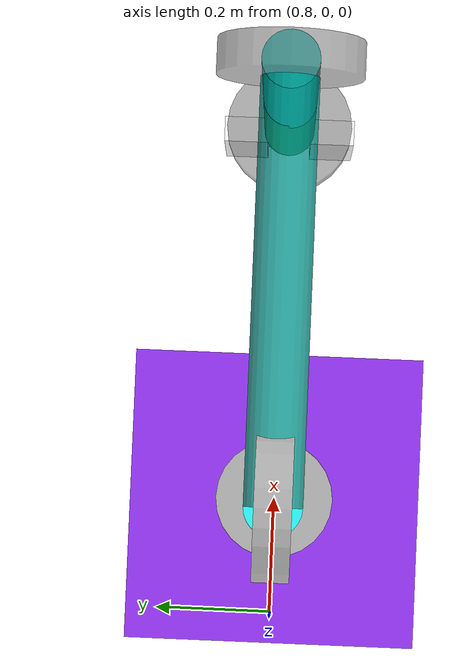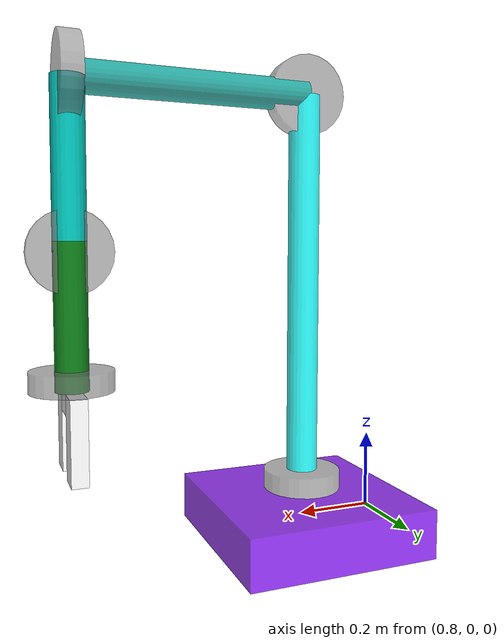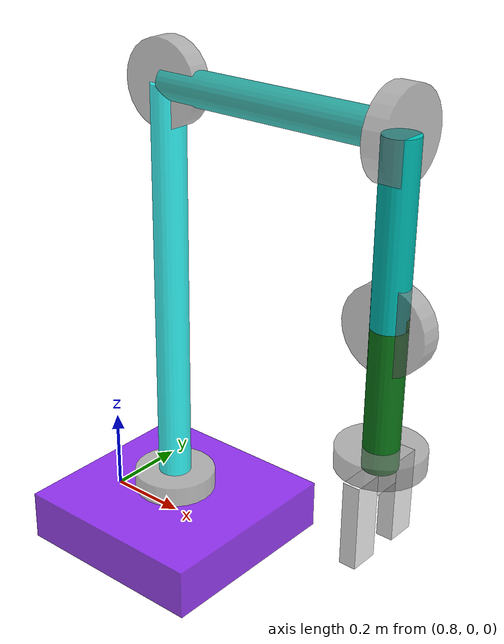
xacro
<?xml version="1.0"?>
<robot xmlns:xacro="http://www.ros.org/wiki/xacro"  name="robot">

    <material name="c_base">
        <color rgba="0.506 0.031 0.98 0.8"/>
    </material>

    <material name="white">
        <color rgba="1 1 1 1"/>
    </material>

    <material name="gray_j_side">
        <color rgba="0.5 0.5 0.5 0.6"/>
    </material>

    <material name="c_l1">
        <color rgba="0 1 1 0.8"/>
    </material>

    <material name="c_l2">
        <color rgba="0 0.617 0.579 0.8"/>
    </material>

    <material name="c_l3">
        <color rgba="0 0.778 0.742 1"/>
    </material>

    <material name="c_g">
        <color rgba="0.05 0.5 0.1 1"/>
    </material>

    <link name="world"></link>

    <joint name="world_to_base" type="prismatic">
        <parent link="world" />
        <child link="base" />
        <origin xyz="1.0 0 0" rpy="1.57 0 0" />
         <axis rpy="0 0 0" xyz="1 0 0" />
        <limit effort="0.1" lower="-3.0" upper="3.0" velocity="0.2"/>
    </joint>

    <link name="base">
        <visual>
            <origin xyz="0 0 0" rpy="1.57 0 0"/>
            <geometry>
                 <box size="0.5 0.5 0.125" />
            </geometry>
            <material name="c_base" />
        </visual>
    </link>

    <joint name="base_to_l1" type="revolute">
        <parent link="base" />
        <child link="l1" />
        <origin xyz="0 0.1 0" rpy="1.57 0 0"  />
        <axis xyz="0 0 1" />
        <limit effort="0.1" lower="-3.14" upper="3.14" velocity="0.2"/>
    </joint>

    <link name="l1">
        <visual>
            <origin xyz="0.0 0 0" rpy="0 0 1.57"/>
            <geometry>
                 <cylinder length="0.05" radius="0.1" />
            </geometry>
            <material name="gray_j_side" />
        </visual>
        <visual>
            <origin xyz="0 0 -0.5" rpy="0 0 1.57"/>
            <geometry>
                <cylinder length="1.0" radius="0.04" />
            </geometry>
            <material name="c_l1" />
        </visual>
    </link>

       <joint name="l1_to_l2" type="revolute">
        <parent link="l1" />
        <child link="l2" />
        <origin xyz="0 0 -1.0" rpy="1.57 0 0" />
        <axis xyz="0 0 1" />
        <limit effort="0.1" lower="0.3" upper="-0.7" velocity="0.2"/>
    </joint>

    <link name="l2">
        <visual>
            <origin xyz="0.0 0 0" rpy="0 0 0"/>
            <geometry>
                 <cylinder length="0.05" radius="0.1" />
            </geometry>
            <material name="gray_j_side" />
        </visual>
        <visual>
            <origin xyz="0.3 0 0" rpy="0 1.57 0 "/>
            <geometry>
                <cylinder length="0.6" radius="0.04" />
            </geometry>
            <material name="c_l2" />
        </visual>
    </link>

    <joint name="l2_to_l3" type="revolute">
        <parent link="l2" />
        <child link="l3" />
        <origin xyz="0.6 0 0" rpy="0 1.57 0"/>
        <axis  xyz="0 0 1" />
        <limit effort="0.1" lower="-1.57" upper="1.57" velocity="0.2"/>
    </joint>

    <link name="l3">
        <visual>
            <origin xyz="0.0 0 0" rpy="0 0 0"/>
            <geometry>
                 <cylinder length="0.05" radius="0.1" />
            </geometry>
            <material name="gray_j_side" />
        </visual>
        <visual>
            <origin xyz="0 0.2 0" rpy="0 1.57 1.57"/>
            <geometry>
                <cylinder length="0.4" radius="0.04" />
            </geometry>
            <material name="c_l3" />
        </visual>
    </link>

    <joint name="l3_to_grip_base" type="revolute">
        <parent link="l3" />
        <child link="grip_base" />
        <origin xyz="0 0.4 0" rpy="0 1.57 0"  />
        <axis xyz="0 0 1" />
        <limit effort="0.1" lower="-1.57" upper="1.57" velocity="0.2"/>
    </joint>

    <link name="grip_base">
        <visual>
            <origin xyz="0.0 0 0" rpy="0 0 0"/>
            <geometry>
                 <cylinder length="0.05" radius="0.1" />
            </geometry>
            <material name="gray_j_side" />
        </visual>
        <visual>
            <origin xyz="0 0.15 0" rpy="0 1.57 1.57" />
            <geometry>
                <cylinder length="0.35" radius="0.04" />
            </geometry>
            <material name="c_g" />
        </visual>
    </link>

    <joint name="gripbase_to_gripper" type="revolute">
        <parent link="grip_base" />
        <child link="gripper" />
        <origin xyz="0 0.3 0" rpy="1.57 0 0" />
        <axis xyz="0 0 1" />
        <limit effort="0.1" lower="-1.5" upper="1.5" velocity="0.2"/>
    </joint>

    <link name="gripper">
        <visual>
            <origin xyz="0.0 0 0" rpy="0 0 0"/>
            <geometry>
                <cylinder length="0.05" radius="0.1" />
            </geometry>
            <material name="gray_j_side" />
        </visual>
         <visual>
            <origin xyz="0 0 -0.05" rpy="0 1.57 0" />
            <geometry>
                <box size="0.05 0.07 0.04" />
            </geometry>
            <material name="white" />
        </visual>
        <visual>
            <origin xyz="0.0 -0.07 -0.125" rpy="0 1.57 0" />
            <geometry>
                <box size="0.2 0.07 0.04" />
            </geometry>
            <material name="white" />
        </visual>
        <visual>
            <origin xyz="0.0 0.07 -0.125" rpy="0 1.57 0" />
            <geometry>
                <box size="0.2 0.07 0.04" />
            </geometry>
            <material name="white" />
        </visual>
    </link>

    <joint name="gripper_to_ef" type="fixed">
        <parent link="gripper" />
        <child link="ef" />
        <origin xyz="0 0 -0.2" rpy="0 3.14 -1.57"  />
    </joint>

    <link name="ef" />

</robot>
